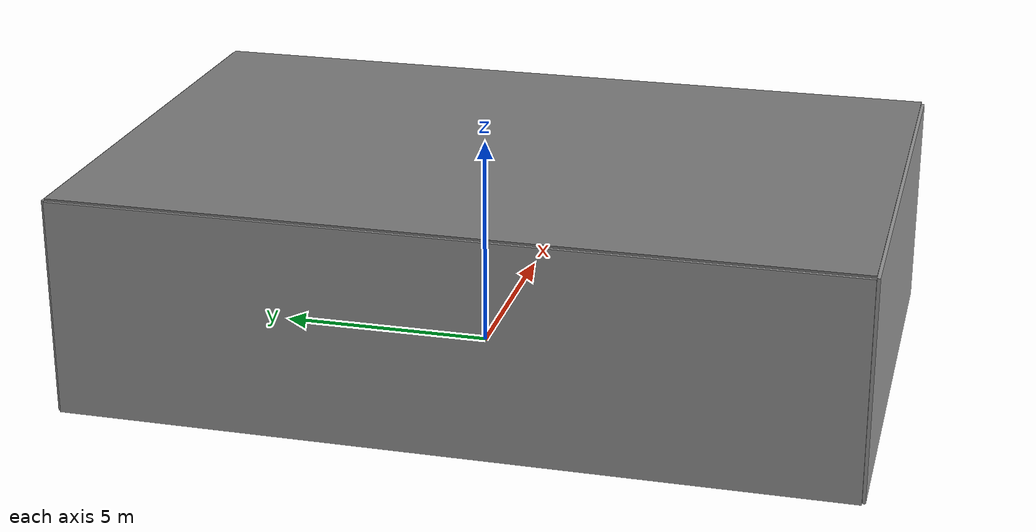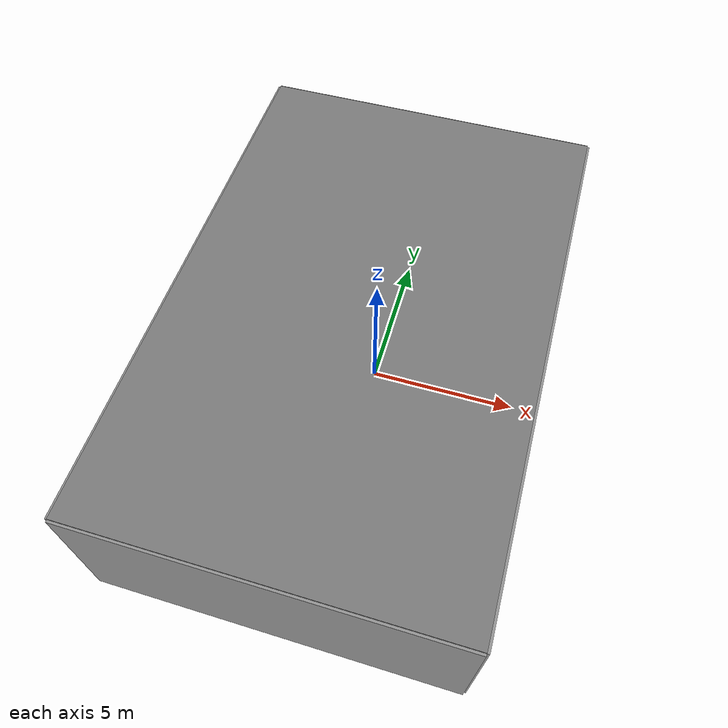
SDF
<sdf version="1.9">
 <world name="imav2026_indoor">
  <physics type="ode">
   <max_step_size>0.004</max_step_size>
   <real_time_factor>1.0</real_time_factor>
   <real_time_update_rate>250</real_time_update_rate>
  </physics>
  <plugin name="gz::sim::systems::Physics" filename="gz-sim-physics-system"/>
  <plugin name="gz::sim::systems::UserCommands" filename="gz-sim-user-commands-system"/>
  <plugin name="gz::sim::systems::SceneBroadcaster" filename="gz-sim-scene-broadcaster-system"/>
  <plugin name="gz::sim::systems::Contact" filename="gz-sim-contact-system"/>
  <plugin name="gz::sim::systems::Imu" filename="gz-sim-imu-system"/>
  <plugin name="gz::sim::systems::AirPressure" filename="gz-sim-air-pressure-system"/>
  <plugin name="gz::sim::systems::ApplyLinkWrench" filename="gz-sim-apply-link-wrench-system"/>
  <plugin name="gz::sim::systems::NavSat" filename="gz-sim-navsat-system"/>
  <plugin name="gz::sim::systems::Sensors" filename="gz-sim-sensors-system">
   <render_engine>ogre2</render_engine>
  </plugin>
  <plugin name="imav2026::LandingPlatformMotion" filename="Imav2026LandingPlatformMotion">
   <model_name>imav2026_landing_platform</model_name>
   <min_x>1.569980</min_x>
   <max_x>2.727315</max_x>
   <speed_mps>0.2</speed_mps>
  </plugin>
  <gravity>0 0 -9.8</gravity>
  <magnetic_field>6e-06 2.3e-05 -4.2e-05</magnetic_field>
  <atmosphere type="adiabatic"/>
  <scene>
   <grid>false</grid>
   <ambient>1 1 1 1</ambient>
   <background>0.3 0.7 0.9 1</background>
   <shadows>false</shadows>
  </scene>
  <light type="directional" name="sun">
   <cast_shadows>false</cast_shadows>
   <pose>-5 -3 10 0 0 0</pose>
   <diffuse>1 1 1 1</diffuse>
   <specular>1 1 1 1</specular>
   <direction>0 0 -1</direction>
  </light>
  <light type="point" name="fill_light">
   <cast_shadows>false</cast_shadows>
   <pose>0 0 3.5 0 0 0</pose>
   <diffuse>0.5 0.5 0.5 1</diffuse>
   <specular>0.1 0.1 0.1 1</specular>
   <attenuation><range>20</range><linear>0.05</linear><constant>0.8</constant></attenuation>
  </light>
  <model name="ground_plane">
   <static>true</static>
   <link name="link">
    <collision name="collision">
     <geometry><plane><normal>0.0 0.0 1</normal><size>1 1</size></plane></geometry>
    </collision>
   </link>
  </model>
  <include><uri>model://imav2026_indoor_static</uri></include>
  <model name="arena_wall_north">
   <static>true</static>
   <pose>-0.35 8.2 2.5 0 0 0</pose>
   <link name="link">
    <visual name="visual">
     <geometry><box><size>11.5 0.15 5.0</size></box></geometry>
     <material><ambient>0.6 0.6 0.6 1</ambient><diffuse>0.6 0.6 0.6 1</diffuse></material>
    </visual>
    <collision name="collision"><geometry><box><size>11.5 0.15 5.0</size></box></geometry></collision>
   </link>
  </model>
  <model name="arena_wall_south">
   <static>true</static>
   <pose>-0.35 -9.6 2.5 0 0 0</pose>
   <link name="link">
    <visual name="visual">
     <geometry><box><size>11.5 0.15 5.0</size></box></geometry>
     <material><ambient>0.6 0.6 0.6 1</ambient><diffuse>0.6 0.6 0.6 1</diffuse></material>
    </visual>
    <collision name="collision"><geometry><box><size>11.5 0.15 5.0</size></box></geometry></collision>
   </link>
  </model>
  <model name="arena_wall_east">
   <static>true</static>
   <pose>5.4 -0.7 2.5 0 0 0</pose>
   <link name="link">
    <visual name="visual">
     <geometry><box><size>0.15 17.8 5.0</size></box></geometry>
     <material><ambient>0.6 0.6 0.6 1</ambient><diffuse>0.6 0.6 0.6 1</diffuse></material>
    </visual>
    <collision name="collision"><geometry><box><size>0.15 17.8 5.0</size></box></geometry></collision>
   </link>
  </model>
  <model name="arena_wall_west">
   <static>true</static>
   <pose>-6.1 -0.7 2.5 0 0 0</pose>
   <link name="link">
    <visual name="visual">
     <geometry><box><size>0.15 17.8 5.0</size></box></geometry>
     <material><ambient>0.6 0.6 0.6 1</ambient><diffuse>0.6 0.6 0.6 1</diffuse></material>
    </visual>
    <collision name="collision"><geometry><box><size>0.15 17.8 5.0</size></box></geometry></collision>
   </link>
  </model>
  <model name="arena_roof">
   <static>true</static>
   <pose>-0.35 -0.7 5.0 0 0 0</pose>
   <link name="link">
    <visual name="visual">
     <geometry><box><size>11.5 17.8 0.1</size></box></geometry>
     <material><ambient>0.5 0.5 0.5 0</ambient><diffuse>0.5 0.5 0.5 0</diffuse></material>
    </visual>
    <collision name="collision"><geometry><box><size>11.5 17.8 0.1</size></box></geometry></collision>
   </link>
  </model>
  <include><uri>model://imav2026_landing_platform</uri><pose>2.727315 -6.993107 0.03 0 0 0</pose></include>
  <include><uri>model://imav2026_copper_ring</uri><pose>0.190799 4.216640 0.550411 1.570796 0 0</pose></include>
  <include>
   <name>copper_disc_0</name>
   <uri>model://imav2026_copper_disc</uri>
   <pose>2.279557 4.539700 1.986765 1.570796 0 0</pose>
  </include>
  <include>
   <name>copper_disc_1</name>
   <uri>model://imav2026_copper_disc</uri>
   <pose>2.068919 4.539700 1.610023 1.570796 0 0</pose>
  </include>
  <include>
   <name>copper_disc_2</name>
   <uri>model://imav2026_copper_disc</uri>
   <pose>1.690054 4.539699 0.937345 1.570796 0 0</pose>
  </include>
  <include>
   <name>copper_disc_3</name>
   <uri>model://imav2026_copper_disc</uri>
   <pose>1.442930 4.539699 0.517247 1.570796 0 0</pose>
  </include>
  <include><name>red_bar_0</name><uri>model://imav2026_red_bar</uri><pose>0 -5.532255 1.0 0 0 0</pose></include>
  <include>
   <name>blue_bar_0</name>
   <uri>model://imav2026_blue_bar</uri>
   <pose>0 -4.527609 1.0 0 0 0</pose>
  </include>
  <include>
   <name>blue_bar_1</name>
   <uri>model://imav2026_blue_bar</uri>
   <pose>0 -3.546240 1.0 0 0 0</pose>
  </include>
  <include><name>thermal_sources</name><uri>model://imav2026_thermal_sources</uri></include>
  <spherical_coordinates>
   <surface_model>EARTH_WGS84</surface_model>
   <world_frame_orientation>ENU</world_frame_orientation>
   <latitude_deg>47.397971057728974</latitude_deg>
   <longitude_deg>8.546163739800146</longitude_deg>
   <elevation>0</elevation>
  </spherical_coordinates>
 </world>
</sdf>

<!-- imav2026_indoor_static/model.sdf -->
<sdf version="1.9">
  <model name="imav2026_indoor_static">
    <static>true</static>

    <link name="static_scene_link">
      <pose>0 0 0 0 0 0</pose>

      <visual name="basic_world_visual">
        <pose>0 0 0 0 0 0</pose>
        <geometry>
          <mesh>
            <uri>model://imav2026_indoor_static/meshes/basic_world_v9.dae</uri>
          </mesh>
        </geometry>
      </visual>

      <collision name="basic_world_collision">
        <pose>0 0 0 0 0 0</pose>
        <geometry>
          <mesh>
            <uri>model://imav2026_indoor_static/meshes/basic_world_v9.dae</uri>
          </mesh>
        </geometry>
      </collision>
    </link>
  </model>
</sdf>

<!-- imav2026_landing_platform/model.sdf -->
<sdf version="1.9">
  <model name="imav2026_landing_platform">
    <static>false</static>

    <link name="landing_platform_link">
      <pose>0 0 0 0 0 0</pose>

      <visual name="landing_platform_visual">
        <pose>0 0 0 0 0 0</pose>
        <geometry>
          <mesh>
            <uri>model://imav2026_landing_platform/meshes/landing_platform_v2.dae</uri>
          </mesh>
        </geometry>
      </visual>

      <collision name="landing_platform_collision">
        <pose>0 0 0 0 0 0</pose>
        <geometry>
          <mesh>
            <uri>model://imav2026_landing_platform/meshes/landing_platform_v2.dae</uri>
          </mesh>
        </geometry>
      </collision>
    </link>

  </model>
</sdf>

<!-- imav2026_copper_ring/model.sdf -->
<sdf version="1.9">
  <model name="imav2026_copper_ring">
    <static>true</static>

    <link name="copper_ring_link">
      <visual name="copper_ring_visual">
        <geometry>
          <mesh>
            <uri>model://imav2026_copper_ring/meshes/ring_v2.dae</uri>
          </mesh>
        </geometry>
      </visual>

      <collision name="copper_ring_collision">
        <geometry>
          <mesh>
            <uri>model://imav2026_copper_ring/meshes/ring_v2.dae</uri>
          </mesh>
        </geometry>
      </collision>
    </link>
  </model>
</sdf>

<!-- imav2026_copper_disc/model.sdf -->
<sdf version="1.9">
  <model name="imav2026_copper_disc">
    <static>true</static>

    <link name="copper_disc_link">
      <visual name="copper_disc_visual">
        <geometry>
          <cylinder>
            <radius>0.04</radius>
            <length>0.01</length>
          </cylinder>
        </geometry>
        <material>
          <ambient>0.8 0.38 0.12 1</ambient>
          <diffuse>0.9 0.45 0.16 1</diffuse>
          <specular>0.6 0.45 0.25 1</specular>
        </material>
      </visual>

      <collision name="copper_disc_collision">
        <geometry>
          <cylinder>
            <radius>0.04</radius>
            <length>0.01</length>
          </cylinder>
        </geometry>
      </collision>
      <sensor name="copper_disc_contact_sensor" type="contact">
        <always_on>true</always_on>
        <update_rate>30.0</update_rate>

        <contact>
          <collision>copper_disc_collision</collision>
        </contact>

      </sensor>
    </link>
  </model>
</sdf>

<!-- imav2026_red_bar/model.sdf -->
<sdf version="1.9">
  <model name="imav2026_red_bar">
    <static>true</static>

    <link name="red_bar_link">
      <visual name="red_bar_visual">
        <pose>0 0 0 0 1.570796 0</pose>
        <geometry>
          <cylinder>
            <radius>0.015</radius>
            <length>1.6</length>
          </cylinder>
        </geometry>
        <material>
          <ambient>0.85 0.02 0.02 1</ambient>
          <diffuse>0.95 0.04 0.04 1</diffuse>
          <specular>0.25 0.10 0.10 1</specular>
        </material>
      </visual>

      <collision name="red_bar_collision">
        <pose>0 0 0 0 1.570796 0</pose>
        <geometry>
          <cylinder>
            <radius>0.015</radius>
            <length>1.6</length>
          </cylinder>
        </geometry>
      </collision>
    </link>
  </model>
</sdf>

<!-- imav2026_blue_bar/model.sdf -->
<sdf version="1.9">
  <model name="imav2026_blue_bar">
    <static>true</static>

    <link name="blue_bar_link">
      <visual name="blue_bar_visual">
        <pose>0 0 0 0 1.570796 0</pose>
        <geometry>
          <cylinder>
            <radius>0.015</radius>
            <length>1.6</length>
          </cylinder>
        </geometry>
        <material>
          <ambient>0.02 0.12 0.85 1</ambient>
          <diffuse>0.04 0.20 0.95 1</diffuse>
          <specular>0.10 0.15 0.30 1</specular>
        </material>
      </visual>

      <collision name="blue_bar_collision">
        <pose>0 0 0 0 1.570796 0</pose>
        <geometry>
          <cylinder>
            <radius>0.015</radius>
            <length>1.6</length>
          </cylinder>
        </geometry>
      </collision>
    </link>
  </model>
</sdf>

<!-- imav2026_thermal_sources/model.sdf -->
<sdf version="1.9">
  <model name="imav2026_thermal_sources">
    <static>true</static>

    <link name="thermal_source_box_1">
      <pose>0.70285 1.2095 0.06 0 0 0</pose>
      <gravity>false</gravity>
      <self_collide>false</self_collide>
      <temperature_celsius>22</temperature_celsius>
      <source_size>0.24 0.24 0.01</source_size>
    </link>

    <link name="thermal_source_box_2">
      <pose>-0.21172 1.4994 0.06 0 0 0</pose>
      <gravity>false</gravity>
      <self_collide>false</self_collide>
      <temperature_celsius>85</temperature_celsius>
      <source_size>0.24 0.24 0.01</source_size>
    </link>

    <link name="thermal_source_box_3">
      <pose>0.37253 2.0252 0.06 0 0 0</pose>
      <gravity>false</gravity>
      <self_collide>false</self_collide>
      <temperature_celsius>22</temperature_celsius>
      <source_size>0.24 0.24 0.01</source_size>
    </link>
  </model>
</sdf>
